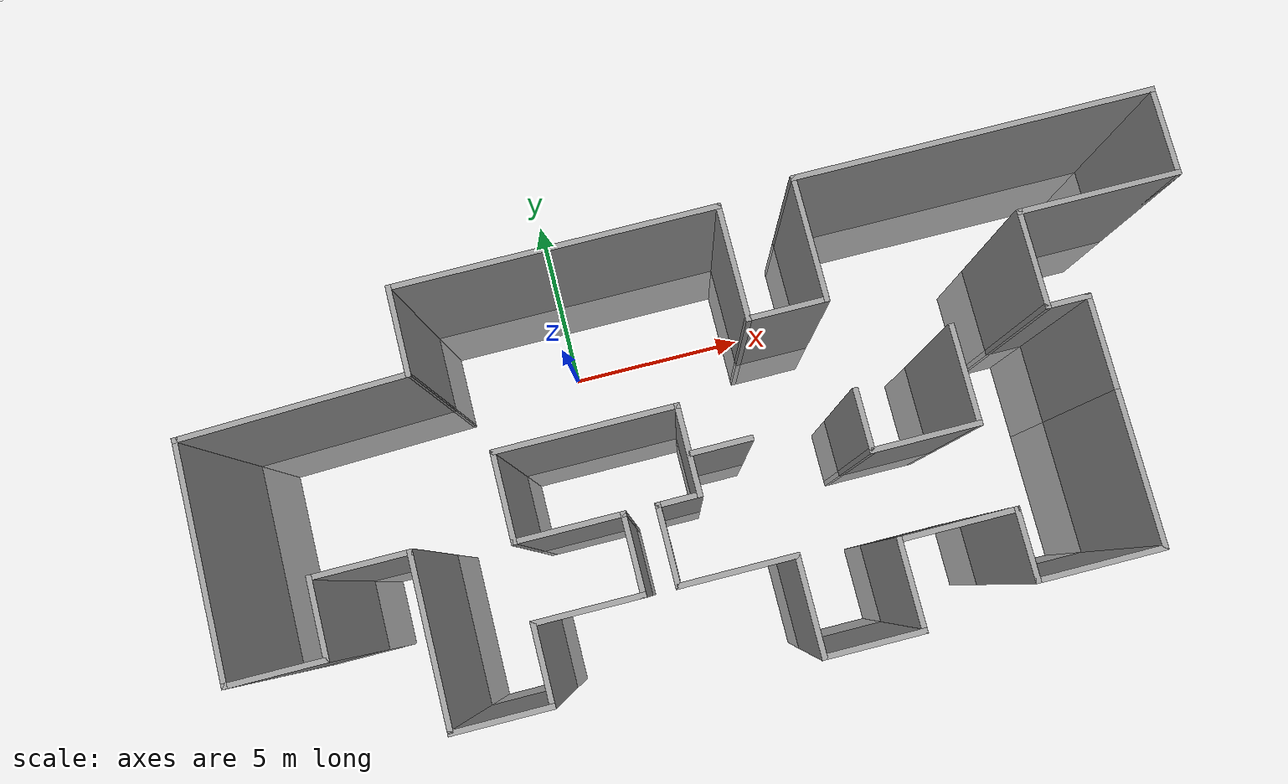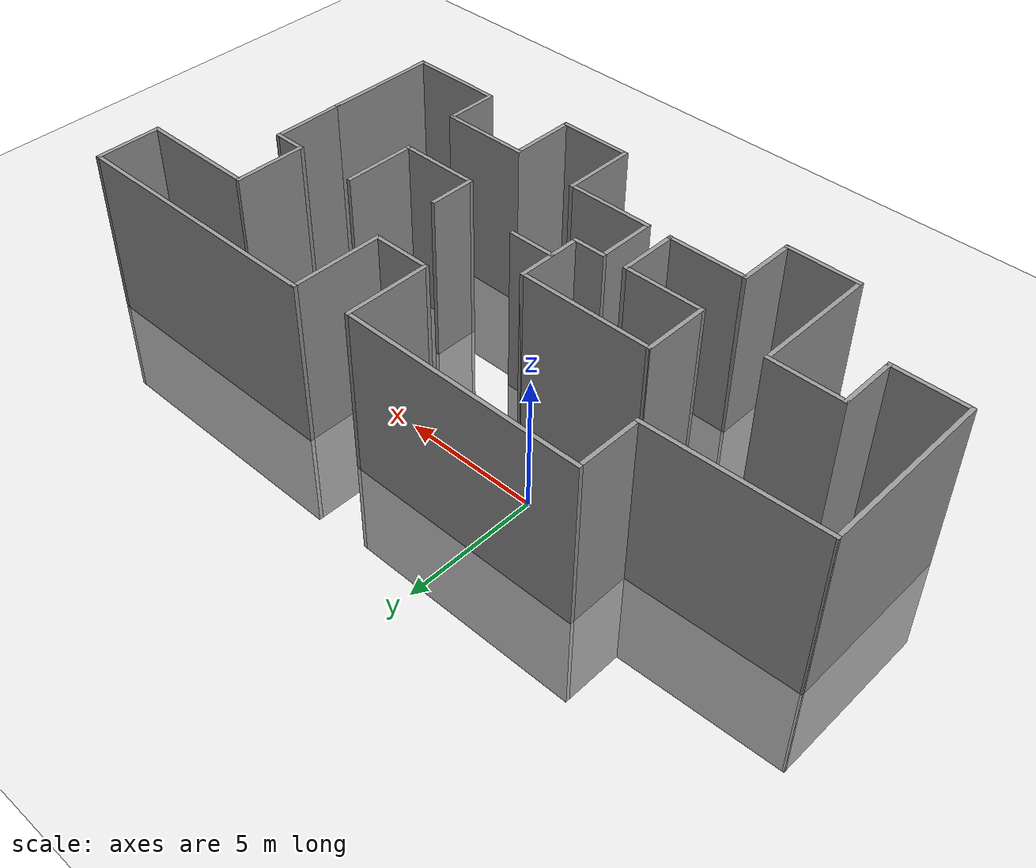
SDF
<sdf version="1.6">
 <world name="default">
  <light name="sun" type="directional">
   <pose>0 0 10 0 -0 0</pose>
   <diffuse>0.8 0.8 0.8 1</diffuse>
   <specular>0.2 0.2 0.2 1</specular>
   <attenuation>
    <range>1000</range>
    <constant>0.9</constant>
    <linear>0.01</linear>
    <quadratic>0.001</quadratic>
   </attenuation>
   <direction>-0.5 0.1 -0.9</direction>
  </light>
  <model name="ground_plane">
   <static>1</static>
   <link name="link">
    <collision name="collision">
     <geometry><plane><normal>0 0 1</normal><size>100 100</size></plane></geometry>
     <surface>
      <contact><collide_bitmask>65535</collide_bitmask></contact>
      <friction><ode><mu>100</mu><mu2>50</mu2></ode></friction>
     </surface>
    </collision>
    <visual name="visual">
     <cast_shadows>0</cast_shadows>
     <geometry><plane><normal>0 0 1</normal><size>100 100</size></plane></geometry>
     <material>
      <script><uri>file://media/materials/scripts/gazebo.material</uri><name>Gazebo/Grey</name></script>
     </material>
    </visual>
   </link>
  </model>
  <gravity>0 0 -9.8</gravity>
  <magnetic_field>6e-06 2.3e-05 -4.2e-05</magnetic_field>
  <atmosphere type="adiabatic"/>
  <physics name="default_physics" default="0" type="ode">
   <max_step_size>0.001</max_step_size>
   <real_time_factor>1</real_time_factor>
   <real_time_update_rate>1000</real_time_update_rate>
  </physics>
  <scene><ambient>0.4 0.4 0.4 1</ambient><background>0.7 0.7 0.7 1</background><shadows>1</shadows></scene>
  <audio><device>default</device></audio>
  <spherical_coordinates>
   <surface_model>EARTH_WGS84</surface_model>
   <latitude_deg>0</latitude_deg>
   <longitude_deg>0</longitude_deg>
   <elevation>0</elevation>
   <heading_deg>0</heading_deg>
  </spherical_coordinates>
  <model name="building1">
   <pose>3.38122 -3.35767 0 0 -0 0</pose>
   <link name="Wall_10">
    <collision name="Wall_10_Collision">
     <geometry><box><size>2.75 0.15 10</size></box></geometry>
     <pose>0 0 1.25 0 -0 0</pose>
    </collision>
    <visual name="Wall_10_Visual">
     <pose>0 0 1.25 0 -0 0</pose>
     <geometry><box><size>2.75 0.15 10</size></box></geometry>
     <material>
      <script><uri>file://media/materials/scripts/gazebo.material</uri><name>Gazebo/Grey</name></script>
      <ambient>1 1 1 1</ambient>
     </material>
     <meta><layer>0</layer></meta>
    </visual>
    <pose>-6.9738 -5.575 0 0 -0 0</pose>
   </link>
   <link name="Wall_11">
    <collision name="Wall_11_Collision">
     <geometry><box><size>2.25 0.15 10</size></box></geometry>
     <pose>0 0 1.25 0 -0 0</pose>
    </collision>
    <visual name="Wall_11_Visual">
     <pose>0 0 1.25 0 -0 0</pose>
     <geometry><box><size>2.25 0.15 10</size></box></geometry>
     <material>
      <script><uri>file://media/materials/scripts/gazebo.material</uri><name>Gazebo/Grey</name></script>
      <ambient>1 1 1 1</ambient>
     </material>
     <meta><layer>0</layer></meta>
    </visual>
    <pose>-5.6738 -4.525 0 0 -0 1.5708</pose>
   </link>
   <link name="Wall_12">
    <collision name="Wall_12_Collision">
     <geometry><box><size>3 0.15 10</size></box></geometry>
     <pose>0 0 1.25 0 -0 0</pose>
    </collision>
    <visual name="Wall_12_Visual">
     <pose>0 0 1.25 0 -0 0</pose>
     <geometry><box><size>3 0.15 10</size></box></geometry>
     <material>
      <script><uri>file://media/materials/scripts/gazebo.material</uri><name>Gazebo/Grey</name></script>
      <ambient>1 1 1 1</ambient>
     </material>
     <meta><layer>0</layer></meta>
    </visual>
    <pose>-4.2488 -3.475 0 0 -0 0</pose>
   </link>
   <link name="Wall_13">
    <collision name="Wall_13_Collision">
     <geometry><box><size>2.25 0.15 10</size></box></geometry>
     <pose>0 0 1.25 0 -0 0</pose>
    </collision>
    <visual name="Wall_13_Visual">
     <pose>0 0 1.25 0 -0 0</pose>
     <geometry><box><size>2.25 0.15 10</size></box></geometry>
     <material>
      <script><uri>file://media/materials/scripts/gazebo.material</uri><name>Gazebo/Grey</name></script>
      <ambient>1 1 1 1</ambient>
     </material>
     <meta><layer>0</layer></meta>
    </visual>
    <pose>-2.8238 -2.425 0 0 -0 1.5708</pose>
   </link>
   <link name="Wall_14">
    <collision name="Wall_14_Collision">
     <geometry><box><size>3 0.15 10</size></box></geometry>
     <pose>0 0 1.25 0 -0 0</pose>
    </collision>
    <visual name="Wall_14_Visual">
     <pose>0 0 1.25 0 -0 0</pose>
     <geometry><box><size>3 0.15 10</size></box></geometry>
     <material>
      <script><uri>file://media/materials/scripts/gazebo.material</uri><name>Gazebo/Grey</name></script>
      <ambient>1 1 1 1</ambient>
     </material>
     <meta><layer>0</layer></meta>
    </visual>
    <pose>-4.2488 -1.375 0 0 -0 3.14159</pose>
   </link>
   <link name="Wall_15">
    <collision name="Wall_15_Collision">
     <geometry><box><size>2.5 0.15 10</size></box></geometry>
     <pose>0 0 1.25 0 -0 0</pose>
    </collision>
    <visual name="Wall_15_Visual">
     <pose>0 0 1.25 0 -0 0</pose>
     <geometry><box><size>2.5 0.15 10</size></box></geometry>
     <material>
      <script><uri>file://media/materials/scripts/gazebo.material</uri><name>Gazebo/Grey</name></script>
      <ambient>1 1 1 1</ambient>
     </material>
     <meta><layer>0</layer></meta>
    </visual>
    <pose>-5.6738 -0.2 0 0 -0 1.5708</pose>
   </link>
   <link name="Wall_16">
    <collision name="Wall_16_Collision">
     <geometry><box><size>5 0.15 10</size></box></geometry>
     <pose>0 0 1.25 0 -0 0</pose>
    </collision>
    <visual name="Wall_16_Visual">
     <pose>0 0 1.25 0 -0 0</pose>
     <geometry><box><size>5 0.15 10</size></box></geometry>
     <material>
      <script><uri>file://media/materials/scripts/gazebo.material</uri><name>Gazebo/Grey</name></script>
      <ambient>1 1 1 1</ambient>
     </material>
     <meta><layer>0</layer></meta>
    </visual>
    <pose>-3.2488 0.975 0 0 -0 0</pose>
   </link>
   <link name="Wall_17">
    <collision name="Wall_17_Collision">
     <geometry><box><size>2.5 0.15 10</size></box></geometry>
     <pose>0 0 1.25 0 -0 0</pose>
    </collision>
    <visual name="Wall_17_Visual">
     <pose>0 0 1.25 0 -0 0</pose>
     <geometry><box><size>2.5 0.15 10</size></box></geometry>
     <material>
      <script><uri>file://media/materials/scripts/gazebo.material</uri><name>Gazebo/Grey</name></script>
      <ambient>1 1 1 1</ambient>
     </material>
     <meta><layer>0</layer></meta>
    </visual>
    <pose>-0.823801 -0.2 0 0 -0 -1.5708</pose>
   </link>
   <link name="Wall_18">
    <collision name="Wall_18_Collision">
     <geometry><box><size>1.25 0.15 10</size></box></geometry>
     <pose>0 0 1.25 0 -0 0</pose>
    </collision>
    <visual name="Wall_18_Visual">
     <pose>0 0 1.25 0 -0 0</pose>
     <geometry><box><size>1.25 0.15 10</size></box></geometry>
     <material>
      <script><uri>file://media/materials/scripts/gazebo.material</uri><name>Gazebo/Grey</name></script>
      <ambient>1 1 1 1</ambient>
     </material>
     <meta><layer>0</layer></meta>
    </visual>
    <pose>-1.3738 -1.375 0 0 -0 3.14159</pose>
   </link>
   <link name="Wall_19">
    <collision name="Wall_19_Collision">
     <geometry><box><size>2.25 0.15 10</size></box></geometry>
     <pose>0 0 1.25 0 -0 0</pose>
    </collision>
    <visual name="Wall_19_Visual">
     <pose>0 0 1.25 0 -0 0</pose>
     <geometry><box><size>2.25 0.15 10</size></box></geometry>
     <material>
      <script><uri>file://media/materials/scripts/gazebo.material</uri><name>Gazebo/Grey</name></script>
      <ambient>1 1 1 1</ambient>
     </material>
     <meta><layer>0</layer></meta>
    </visual>
    <pose>-1.9238 -2.425 0 0 -0 -1.5708</pose>
   </link>
   <link name="Wall_20">
    <collision name="Wall_20_Collision">
     <geometry><box><size>3.25 0.15 10</size></box></geometry>
     <pose>0 0 1.25 0 -0 0</pose>
    </collision>
    <visual name="Wall_20_Visual">
     <pose>0 0 1.25 0 -0 0</pose>
     <geometry><box><size>3.25 0.15 10</size></box></geometry>
     <material>
      <script><uri>file://media/materials/scripts/gazebo.material</uri><name>Gazebo/Grey</name></script>
      <ambient>1 1 1 1</ambient>
     </material>
     <meta><layer>0</layer></meta>
    </visual>
    <pose>-0.373801 -3.475 0 0 -0 0</pose>
   </link>
   <link name="Wall_21">
    <collision name="Wall_21_Collision">
     <geometry><box><size>2.75 0.15 10</size></box></geometry>
     <pose>0 0 1.25 0 -0 0</pose>
    </collision>
    <visual name="Wall_21_Visual">
     <pose>0 0 1.25 0 -0 0</pose>
     <geometry><box><size>2.75 0.15 10</size></box></geometry>
     <material>
      <script><uri>file://media/materials/scripts/gazebo.material</uri><name>Gazebo/Grey</name></script>
      <ambient>1 1 1 1</ambient>
     </material>
     <meta><layer>0</layer></meta>
    </visual>
    <pose>1.1762 -4.775 0 0 -0 -1.5708</pose>
   </link>
   <link name="Wall_22">
    <collision name="Wall_22_Collision">
     <geometry><box><size>2.75 0.15 10</size></box></geometry>
     <pose>0 0 1.25 0 -0 0</pose>
    </collision>
    <visual name="Wall_22_Visual">
     <pose>0 0 1.25 0 -0 0</pose>
     <geometry><box><size>2.75 0.15 10</size></box></geometry>
     <material>
      <script><uri>file://media/materials/scripts/gazebo.material</uri><name>Gazebo/Grey</name></script>
      <ambient>1 1 1 1</ambient>
     </material>
     <meta><layer>0</layer></meta>
    </visual>
    <pose>2.4762 -6.075 0 0 -0 0</pose>
   </link>
   <link name="Wall_23">
    <collision name="Wall_23_Collision">
     <geometry><box><size>2.5 0.15 10</size></box></geometry>
     <pose>0 0 1.25 0 -0 0</pose>
    </collision>
    <visual name="Wall_23_Visual">
     <pose>0 0 1.25 0 -0 0</pose>
     <geometry><box><size>2.5 0.15 10</size></box></geometry>
     <material>
      <script><uri>file://media/materials/scripts/gazebo.material</uri><name>Gazebo/Grey</name></script>
      <ambient>1 1 1 1</ambient>
     </material>
     <meta><layer>0</layer></meta>
    </visual>
    <pose>3.7762 -4.9 0 0 -0 1.5708</pose>
   </link>
   <link name="Wall_24">
    <collision name="Wall_24_Collision">
     <geometry><box><size>3.25 0.15 10</size></box></geometry>
     <pose>0 0 1.25 0 -0 0</pose>
    </collision>
    <visual name="Wall_24_Visual">
     <pose>0 0 1.25 0 -0 0</pose>
     <geometry><box><size>3.25 0.15 10</size></box></geometry>
     <material>
      <script><uri>file://media/materials/scripts/gazebo.material</uri><name>Gazebo/Grey</name></script>
      <ambient>1 1 1 1</ambient>
     </material>
     <meta><layer>0</layer></meta>
    </visual>
    <pose>5.3262 -3.725 0 0 -0 0</pose>
   </link>
   <link name="Wall_25">
    <collision name="Wall_25_Collision">
     <geometry><box><size>2 0.15 10</size></box></geometry>
     <pose>0 0 1.25 0 -0 0</pose>
    </collision>
    <visual name="Wall_25_Visual">
     <pose>0 0 1.25 0 -0 0</pose>
     <geometry><box><size>2 0.15 10</size></box></geometry>
     <material>
      <script><uri>file://media/materials/scripts/gazebo.material</uri><name>Gazebo/Grey</name></script>
      <ambient>1 1 1 1</ambient>
     </material>
     <meta><layer>0</layer></meta>
    </visual>
    <pose>6.8762 -4.65 0 0 -0 -1.5708</pose>
   </link>
   <link name="Wall_26">
    <collision name="Wall_26_Collision">
     <geometry><box><size>3.5 0.15 10</size></box></geometry>
     <pose>0 0 1.25 0 -0 0</pose>
    </collision>
    <visual name="Wall_26_Visual">
     <pose>0 0 1.25 0 -0 0</pose>
     <geometry><box><size>3.5 0.15 10</size></box></geometry>
     <material>
      <script><uri>file://media/materials/scripts/gazebo.material</uri><name>Gazebo/Grey</name></script>
      <ambient>1 1 1 1</ambient>
     </material>
     <meta><layer>0</layer></meta>
    </visual>
    <pose>8.5512 -5.575 0 0 -0 0</pose>
   </link>
   <link name="Wall_27">
    <collision name="Wall_27_Collision">
     <geometry><box><size>4.25 0.15 10</size></box></geometry>
     <pose>0 0 1.25 0 -0 0</pose>
    </collision>
    <visual name="Wall_27_Visual">
     <pose>0 0 1.25 0 -0 0</pose>
     <geometry><box><size>4.25 0.15 10</size></box></geometry>
     <material>
      <script><uri>file://media/materials/scripts/gazebo.material</uri><name>Gazebo/Grey</name></script>
      <ambient>1 1 1 1</ambient>
     </material>
     <meta><layer>0</layer></meta>
    </visual>
    <pose>10.2262 -3.525 0 0 -0 1.5708</pose>
   </link>
   <link name="Wall_28">
    <collision name="Wall_28_Collision">
     <geometry><box><size>2.75 0.15 10</size></box></geometry>
     <pose>0 0 1.25 0 -0 0</pose>
    </collision>
    <visual name="Wall_28_Visual">
     <pose>0 0 1.25 0 -0 0</pose>
     <geometry><box><size>2.75 0.15 10</size></box></geometry>
     <material>
      <script><uri>file://media/materials/scripts/gazebo.material</uri><name>Gazebo/Grey</name></script>
      <ambient>1 1 1 1</ambient>
     </material>
     <meta><layer>0</layer></meta>
    </visual>
    <pose>10.2262 -0.175 0 0 -0 1.5708</pose>
   </link>
   <link name="Wall_29">
    <collision name="Wall_29_Collision">
     <geometry><box><size>1.25 0.15 10</size></box></geometry>
     <pose>0 0 1.25 0 -0 0</pose>
    </collision>
    <visual name="Wall_29_Visual">
     <pose>0 0 1.25 0 -0 0</pose>
     <geometry><box><size>1.25 0.15 10</size></box></geometry>
     <material>
      <script><uri>file://media/materials/scripts/gazebo.material</uri><name>Gazebo/Grey</name></script>
      <ambient>1 1 1 1</ambient>
     </material>
     <meta><layer>0</layer></meta>
    </visual>
    <pose>9.6762 1.125 0 0 -0 3.14159</pose>
   </link>
   <link name="Wall_30">
    <collision name="Wall_30_Collision">
     <geometry><box><size>2.75 0.15 10</size></box></geometry>
     <pose>0 0 1.25 0 -0 0</pose>
    </collision>
    <visual name="Wall_30_Visual">
     <pose>0 0 1.25 0 -0 0</pose>
     <geometry><box><size>2.75 0.15 10</size></box></geometry>
     <material>
      <script><uri>file://media/materials/scripts/gazebo.material</uri><name>Gazebo/Grey</name></script>
      <ambient>1 1 1 1</ambient>
     </material>
     <meta><layer>0</layer></meta>
    </visual>
    <pose>9.1262 2.425 0 0 -0 1.5708</pose>
   </link>
   <link name="Wall_31">
    <collision name="Wall_31_Collision">
     <geometry><box><size>4.5 0.15 10</size></box></geometry>
     <pose>0 0 1.25 0 -0 0</pose>
    </collision>
    <visual name="Wall_31_Visual">
     <pose>0 0 1.25 0 -0 0</pose>
     <geometry><box><size>4.5 0.15 10</size></box></geometry>
     <material>
      <script><uri>file://media/materials/scripts/gazebo.material</uri><name>Gazebo/Grey</name></script>
      <ambient>1 1 1 1</ambient>
     </material>
     <meta><layer>0</layer></meta>
    </visual>
    <pose>11.3012 3.725 0 0 -0 0</pose>
   </link>
   <link name="Wall_32">
    <collision name="Wall_32_Collision">
     <geometry><box><size>2.5 0.15 10</size></box></geometry>
     <pose>0 0 1.25 0 -0 0</pose>
    </collision>
    <visual name="Wall_32_Visual">
     <pose>0 0 1.25 0 -0 0</pose>
     <geometry><box><size>2.5 0.15 10</size></box></geometry>
     <material>
      <script><uri>file://media/materials/scripts/gazebo.material</uri><name>Gazebo/Grey</name></script>
      <ambient>1 1 1 1</ambient>
     </material>
     <meta><layer>0</layer></meta>
    </visual>
    <pose>13.4762 4.9 0 0 -0 1.5708</pose>
   </link>
   <link name="Wall_33">
    <collision name="Wall_33_Collision">
     <geometry><box><size>10 0.15 10</size></box></geometry>
     <pose>0 0 1.25 0 -0 0</pose>
    </collision>
    <visual name="Wall_33_Visual">
     <pose>0 0 1.25 0 -0 0</pose>
     <geometry><box><size>10 0.15 10</size></box></geometry>
     <material>
      <script><uri>file://media/materials/scripts/gazebo.material</uri><name>Gazebo/Grey</name></script>
      <ambient>1 1 1 1</ambient>
     </material>
     <meta><layer>0</layer></meta>
    </visual>
    <pose>8.5512 6.075 0 0 -0 3.14159</pose>
   </link>
   <link name="Wall_34">
    <collision name="Wall_34_Collision">
     <geometry><box><size>3.5 0.15 10</size></box></geometry>
     <pose>0 0 1.25 0 -0 0</pose>
    </collision>
    <visual name="Wall_34_Visual">
     <pose>0 0 1.25 0 -0 0</pose>
     <geometry><box><size>3.5 0.15 10</size></box></geometry>
     <material>
      <script><uri>file://media/materials/scripts/gazebo.material</uri><name>Gazebo/Grey</name></script>
      <ambient>1 1 1 1</ambient>
     </material>
     <meta><layer>0</layer></meta>
    </visual>
    <pose>3.6262 4.4 0 0 -0 -1.5708</pose>
   </link>
   <link name="Wall_35">
    <collision name="Wall_35_Collision">
     <geometry><box><size>2.25 0.15 10</size></box></geometry>
     <pose>0 0 1.25 0 -0 0</pose>
    </collision>
    <visual name="Wall_35_Visual">
     <pose>0 0 1.25 0 -0 0</pose>
     <geometry><box><size>2.25 0.15 10</size></box></geometry>
     <material>
      <script><uri>file://media/materials/scripts/gazebo.material</uri><name>Gazebo/Grey</name></script>
      <ambient>1 1 1 1</ambient>
     </material>
     <meta><layer>0</layer></meta>
    </visual>
    <pose>2.5762 2.725 0 0 -0 3.14159</pose>
   </link>
   <link name="Wall_36">
    <collision name="Wall_36_Collision">
     <geometry><box><size>3.25 0.15 10</size></box></geometry>
     <pose>0 0 1.25 0 -0 0</pose>
    </collision>
    <visual name="Wall_36_Visual">
     <pose>0 0 1.25 0 -0 0</pose>
     <geometry><box><size>3.25 0.15 10</size></box></geometry>
     <material>
      <script><uri>file://media/materials/scripts/gazebo.material</uri><name>Gazebo/Grey</name></script>
      <ambient>1 1 1 1</ambient>
     </material>
     <meta><layer>0</layer></meta>
    </visual>
    <pose>1.5262 4.275 0 0 -0 1.5708</pose>
   </link>
   <link name="Wall_37">
    <collision name="Wall_37_Collision">
     <geometry><box><size>9 0.15 10</size></box></geometry>
     <pose>0 0 1.25 0 -0 0</pose>
    </collision>
    <visual name="Wall_37_Visual">
     <pose>0 0 1.25 0 -0 0</pose>
     <geometry><box><size>9 0.15 10</size></box></geometry>
     <material>
      <script><uri>file://media/materials/scripts/gazebo.material</uri><name>Gazebo/Grey</name></script>
      <ambient>1 1 1 1</ambient>
     </material>
     <meta><layer>0</layer></meta>
    </visual>
    <pose>-2.8988 5.825 0 0 -0 3.14159</pose>
   </link>
   <link name="Wall_38">
    <collision name="Wall_38_Collision">
     <geometry><box><size>2.5 0.15 10</size></box></geometry>
     <pose>0 0 1.25 0 -0 0</pose>
    </collision>
    <visual name="Wall_38_Visual">
     <pose>0 0 1.25 0 -0 0</pose>
     <geometry><box><size>2.5 0.15 10</size></box></geometry>
     <material>
      <script><uri>file://media/materials/scripts/gazebo.material</uri><name>Gazebo/Grey</name></script>
      <ambient>1 1 1 1</ambient>
     </material>
     <meta><layer>0</layer></meta>
    </visual>
    <pose>-7.3238 4.65 0 0 -0 -1.5708</pose>
   </link>
   <link name="Wall_39">
    <collision name="Wall_39_Collision">
     <geometry><box><size>6.30325 0.15 10</size></box></geometry>
     <pose>0 0 1.25 0 -0 0</pose>
    </collision>
    <visual name="Wall_39_Visual">
     <pose>0 0 1.25 0 -0 0</pose>
     <geometry><box><size>6.30325 0.15 10</size></box></geometry>
     <material>
      <script><uri>file://media/materials/scripts/gazebo.material</uri><name>Gazebo/Grey</name></script>
      <ambient>1 1 1 1</ambient>
     </material>
     <meta><layer>0</layer></meta>
    </visual>
    <pose>-10.3988 3.375 0 0 -0 -3.10908</pose>
   </link>
   <link name="Wall_41">
    <collision name="Wall_41_Collision">
     <geometry><box><size>3 0.15 10</size></box></geometry>
     <pose>0 0 1.25 0 -0 0</pose>
    </collision>
    <visual name="Wall_41_Visual">
     <pose>0 0 1.25 0 -0 0</pose>
     <geometry><box><size>3 0.15 10</size></box></geometry>
     <material>
      <script><uri>file://media/materials/scripts/gazebo.material</uri><name>Gazebo/Grey</name></script>
      <ambient>1 1 1 1</ambient>
     </material>
     <meta><layer>0</layer></meta>
    </visual>
    <pose>5.14291 -1.37471 0 0 -0 0</pose>
   </link>
   <link name="Wall_42">
    <collision name="Wall_42_Collision">
     <geometry><box><size>2.75 0.15 10</size></box></geometry>
     <pose>0 0 1.25 0 -0 0</pose>
    </collision>
    <visual name="Wall_42_Visual">
     <pose>0 0 1.25 0 -0 0</pose>
     <geometry><box><size>2.75 0.15 10</size></box></geometry>
     <material>
      <script><uri>file://media/materials/scripts/gazebo.material</uri><name>Gazebo/Grey</name></script>
      <ambient>1 1 1 1</ambient>
     </material>
     <meta><layer>0</layer></meta>
    </visual>
    <pose>6.56791 -0.074715 0 0 -0 1.5708</pose>
   </link>
   <link name="Wall_44">
    <collision name="Wall_44_Collision">
     <geometry><box><size>1.75 0.15 10</size></box></geometry>
     <pose>0 0 1.25 0 -0 0</pose>
    </collision>
    <visual name="Wall_44_Visual">
     <pose>0 0 1.25 0 -0 0</pose>
     <geometry><box><size>1.75 0.15 10</size></box></geometry>
     <material>
      <script><uri>file://media/materials/scripts/gazebo.material</uri><name>Gazebo/Grey</name></script>
      <ambient>1 1 1 1</ambient>
     </material>
     <meta><layer>0</layer></meta>
    </visual>
    <pose>3.71791 -0.574715 0 0 -0 1.5708</pose>
   </link>
   <link name="Wall_46">
    <collision name="Wall_46_Collision">
     <geometry><box><size>1.75 0.15 10</size></box></geometry>
     <pose>0 0 1.25 0 -0 0</pose>
    </collision>
    <visual name="Wall_46_Visual">
     <pose>0 0 1.25 0 -0 0</pose>
     <geometry><box><size>1.75 0.15 10</size></box></geometry>
     <material>
      <script><uri>file://media/materials/scripts/gazebo.material</uri><name>Gazebo/Grey</name></script>
      <ambient>1 1 1 1</ambient>
     </material>
     <meta><layer>0</layer></meta>
    </visual>
    <pose>-0.009446 -0.304057 0 0 -0 0</pose>
   </link>
   <link name="Wall_5">
    <collision name="Wall_5_Collision">
     <geometry><box><size>6.5 0.15 10</size></box></geometry>
     <pose>0 0 1.25 0 -0 0</pose>
    </collision>
    <visual name="Wall_5_Visual">
     <pose>0 0 1.25 0 -0 0</pose>
     <geometry><box><size>6.5 0.15 10</size></box></geometry>
     <material>
      <script><uri>file://media/materials/scripts/gazebo.material</uri><name>Gazebo/Grey</name></script>
      <ambient>1 1 1 1</ambient>
     </material>
     <meta><layer>0</layer></meta>
    </visual>
    <pose>-13.4738 0.1 0 0 -0 -1.5708</pose>
   </link>
   <link name="Wall_6">
    <collision name="Wall_6_Collision">
     <geometry><box><size>2.75 0.15 10</size></box></geometry>
     <pose>0 0 1.25 0 -0 0</pose>
    </collision>
    <visual name="Wall_6_Visual">
     <pose>0 0 1.25 0 -0 0</pose>
     <geometry><box><size>2.75 0.15 10</size></box></geometry>
     <material>
      <script><uri>file://media/materials/scripts/gazebo.material</uri><name>Gazebo/Grey</name></script>
      <ambient>1 1 1 1</ambient>
     </material>
     <meta><layer>0</layer></meta>
    </visual>
    <pose>-12.1738 -3.075 0 0 -0 0</pose>
   </link>
   <link name="Wall_7">
    <collision name="Wall_7_Collision">
     <geometry><box><size>2.25 0.15 10</size></box></geometry>
     <pose>0 0 1.25 0 -0 0</pose>
    </collision>
    <visual name="Wall_7_Visual">
     <pose>0 0 1.25 0 -0 0</pose>
     <geometry><box><size>2.25 0.15 10</size></box></geometry>
     <material>
      <script><uri>file://media/materials/scripts/gazebo.material</uri><name>Gazebo/Grey</name></script>
      <ambient>1 1 1 1</ambient>
     </material>
     <meta><layer>0</layer></meta>
    </visual>
    <pose>-10.8738 -2.025 0 0 -0 1.5708</pose>
   </link>
   <link name="Wall_8">
    <collision name="Wall_8_Collision">
     <geometry><box><size>2.75 0.15 10</size></box></geometry>
     <pose>0 0 1.25 0 -0 0</pose>
    </collision>
    <visual name="Wall_8_Visual">
     <pose>0 0 1.25 0 -0 0</pose>
     <geometry><box><size>2.75 0.15 10</size></box></geometry>
     <material>
      <script><uri>file://media/materials/scripts/gazebo.material</uri><name>Gazebo/Grey</name></script>
      <ambient>1 1 1 1</ambient>
     </material>
     <meta><layer>0</layer></meta>
    </visual>
    <pose>-9.5738 -0.975 0 0 -0 0</pose>
   </link>
   <link name="Wall_9">
    <collision name="Wall_9_Collision">
     <geometry><box><size>4.75 0.15 10</size></box></geometry>
     <pose>0 0 1.25 0 -0 0</pose>
    </collision>
    <visual name="Wall_9_Visual">
     <pose>0 0 1.25 0 -0 0</pose>
     <geometry><box><size>4.75 0.15 10</size></box></geometry>
     <material>
      <script><uri>file://media/materials/scripts/gazebo.material</uri><name>Gazebo/Grey</name></script>
      <ambient>1 1 1 1</ambient>
     </material>
     <meta><layer>0</layer></meta>
    </visual>
    <pose>-8.2738 -3.275 0 0 -0 -1.5708</pose>
   </link>
   <static>1</static>
  </model>
 </world>
</sdf>
